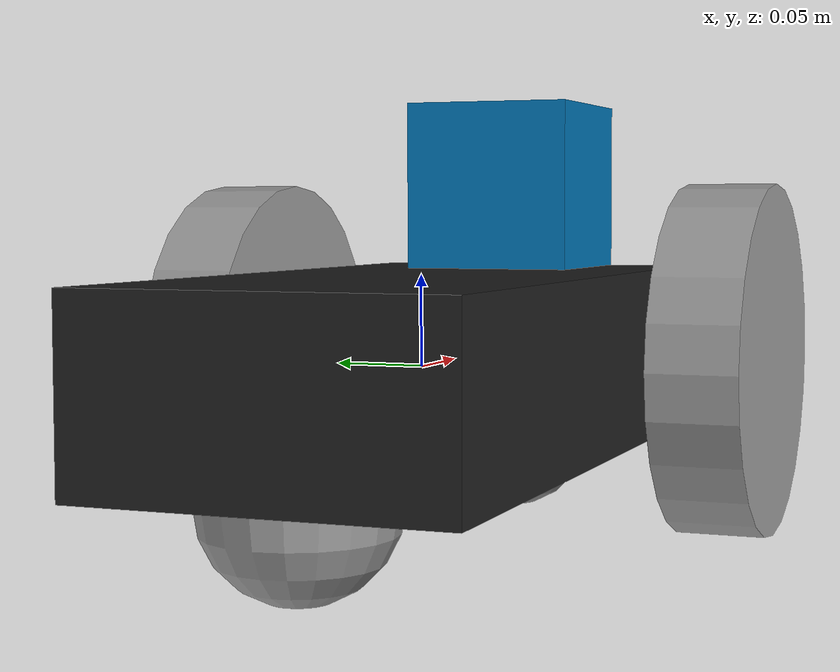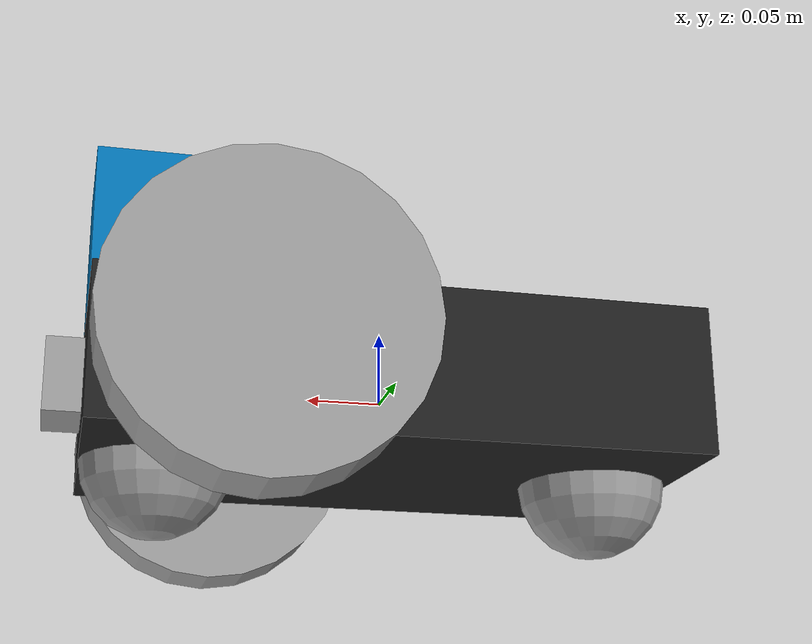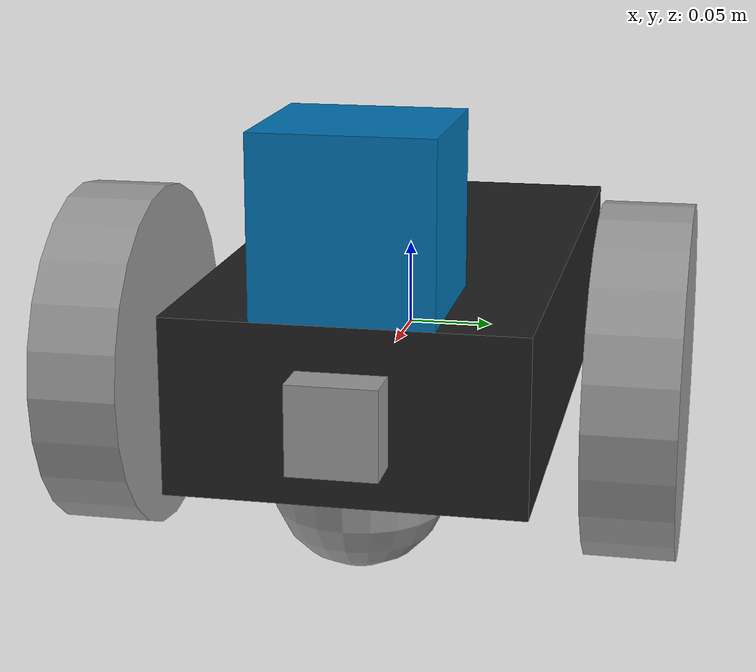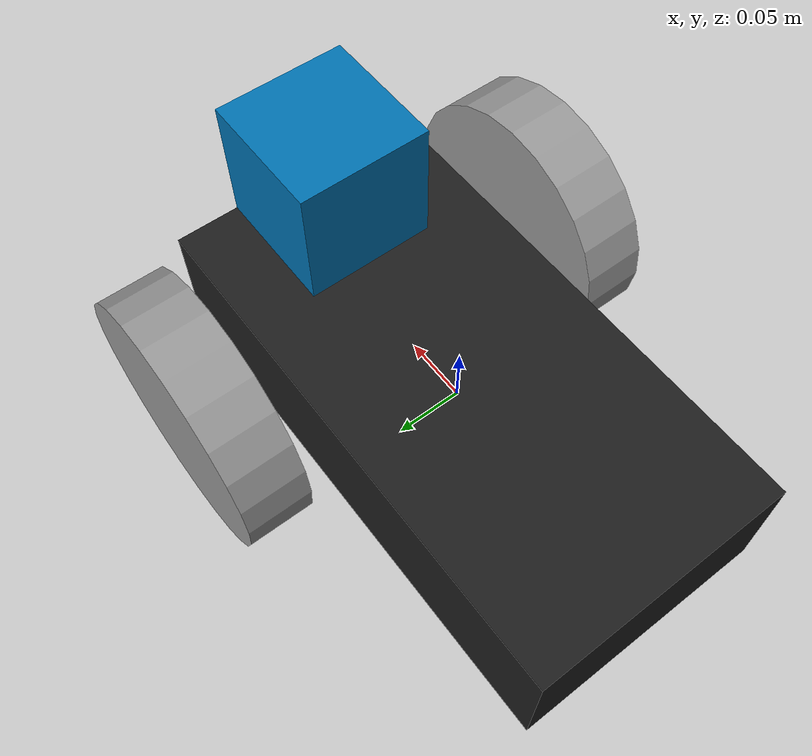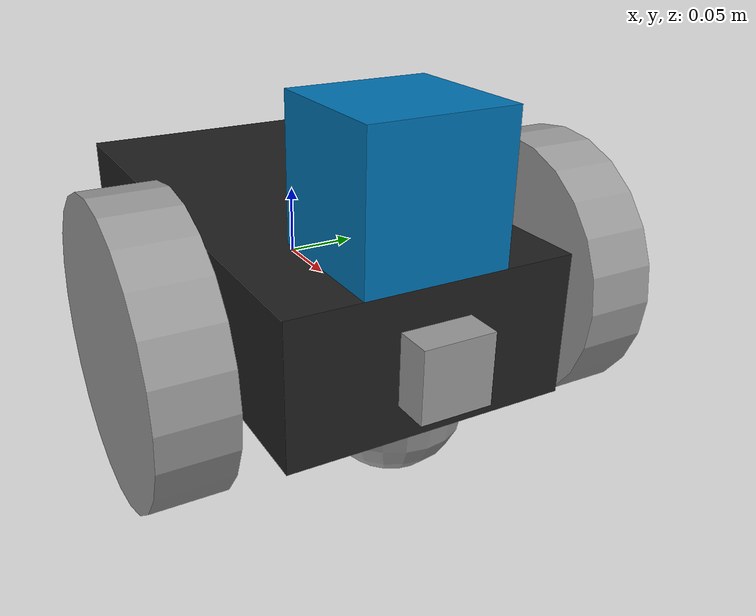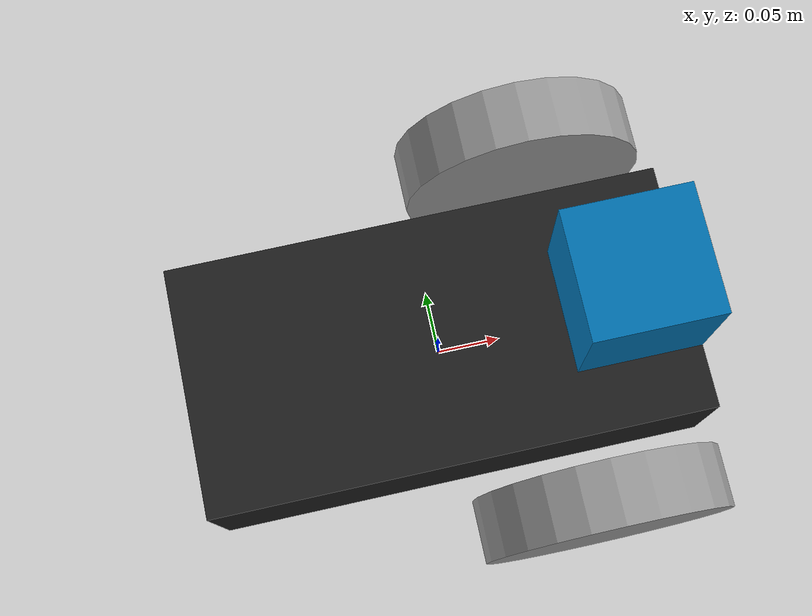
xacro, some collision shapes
<?xml version='1.0'?>

<robot name="slamRobot" xmlns:xacro="http://www.ros.org/wiki/xacro">

  <xacro:property name="cameraSize" value="0.05"/>
  <xacro:property name="cameraMass" value="0.1"/>

  <xacro:include filename="$(find slamBot_description)/urdf/slamBot.gazebo" />
  <xacro:include filename="$(find slamBot_description)/urdf/materials.xacro" />
  <xacro:include filename="$(find slamBot_description)/urdf/macros.xacro" />
  <!--plugin for omni wheels/-->
  <gazebo>
    <plugin name="object_controller" filename="libgazebo_ros_planar_move.so">
      <commandTopic>cmd_vel</commandTopic>
      <odometryTopic>odom</odometryTopic>
      <odometryFrame>odom</odometryFrame>
      <odometryRate>20.0</odometryRate>
      <robotBaseFrame>base</robotBaseFrame>
    </plugin>
  </gazebo>

  <link name='chassis'>
    <pose>0 0 0.1 0 0 0</pose>

    <inertial>
      <mass value="10.0"/>
      <origin xyz="0.0 0 0.1" rpy=" 0 0 0"/>
      <inertia
          ixx="0.5" ixy="0" ixz="0"
          iyy="1.0" iyz="0"
          izz="0.1"
      />
    </inertial>

    <collision name='collision'>
      <geometry>
        <box size=".4 .2 .1"/>
      </geometry>
    </collision>

    <visual name='chassis_visual'>
      <origin xyz="0 0 0" rpy=" 0 0 0"/>
      <geometry>
        <box size=".4 .2 .1"/>
      </geometry>
      <material name="black"/>
    </visual>

    <collision name='caster_collision'>
      <origin xyz="-0.15 0 -0.05" rpy=" 0 0 0"/>
      <geometry>
        <sphere radius="0.05"/>
      </geometry>
      <surface>
        <friction>
          <ode>
            <mu>0</mu>
            <mu2>0</mu2>
            <slip1>1.0</slip1>
            <slip2>1.0</slip2>
          </ode>
        </friction>
      </surface>
    </collision>

    <visual name='caster_visual'>
      <origin xyz="-0.15 0 -0.05" rpy=" 0 0 0"/>
      <geometry>
        <sphere radius="0.05"/>
      </geometry>
      <material name="grey"/>
    </visual>

    <collision name='caster_front_collision'>
      <origin xyz="0.15 0 -0.05" rpy=" 0 0 0"/>
      <geometry>
        <sphere radius="0.05"/>
      </geometry>
      <surface>
        <friction>
          <ode>
            <mu>0</mu>
            <mu2>0</mu2>
            <slip1>1.0</slip1>
            <slip2>1.0</slip2>
          </ode>
        </friction>
      </surface>
    </collision>

    <visual name='caster_front_visual'>
      <origin xyz="0.15 0 -0.05" rpy=" 0 0 0"/>
      <geometry>
        <sphere radius="0.05"/>
      </geometry>
      <material name="grey"/>
    </visual>

  </link>

  <link name="left_wheel">
    <!--origin xyz="0.1 0.13 0.1" rpy="0 1.5707 1.5707"/-->
    <collision name="collision">
      <origin xyz="0 0 0" rpy="0 1.5707 1.5707"/>
      <geometry>
        <cylinder radius="0.1" length="0.05"/>
      </geometry>
    </collision>
    <visual name="left_wheel_visual">
      <origin xyz="0 0 0" rpy="0 1.5707 1.5707"/>
      <geometry>
        <cylinder radius="0.1" length="0.05"/>
      </geometry>
      <material name="grey"/>
    </visual>
    <inertial>
      <origin xyz="0 0 0" rpy="0 1.5707 1.5707"/>
      <mass value="5"/>
      <cylinder_inertia m="5" r="0.1" h="0.05"/>
      <inertia
        ixx="1.0" ixy="0.0" ixz="0.0"
        iyy="1.0" iyz="0.0"
        izz="1.0"/>
    </inertial>
  </link>

  <link name="right_wheel">
    <!--origin xyz="0.1 -0.13 0.1" rpy="0 1.5707 1.5707"/-->
    <collision name="collision">
      <origin xyz="0 0 0" rpy="0 1.5707 1.5707"/>
      <geometry>
        <cylinder radius="0.1" length="0.05"/>
      </geometry>
    </collision>
    <visual name="right_wheel_visual">
      <origin xyz="0 0 0" rpy="0 1.5707 1.5707"/>
      <geometry>
        <cylinder radius="0.1" length="0.05"/>
      </geometry>
      <material name="grey"/>
    </visual>
    <inertial>
      <origin xyz="0 0 0" rpy="0 1.5707 1.5707"/>
      <mass value="5"/>
      <cylinder_inertia m="5" r="0.1" h="0.05"/>
      <inertia
        ixx="1.0" ixy="0.0" ixz="0.0"
        iyy="1.0" iyz="0.0"
        izz="1.0"/>
    </inertial>
  </link>

  <joint type="continuous" name="left_wheel_hinge">
    <origin xyz="0.1 0.15 0" rpy="0 0 0"/>
    <!--origin xyz="0.1 0.13 0" rpy="0 1.5707 1.5707"/-->
    <child link="left_wheel"/>
    <parent link="chassis"/>
    <axis xyz="0 1 0" rpy="0 0 0"/>
    <limit effort="100" velocity="100"/>
    <joint_properties damping="0.0" friction="0.0"/>
  </joint>

  <joint type="continuous" name="right_wheel_hinge">
    <origin xyz="0.1 -0.15 0" rpy="0 0 0"/>
    <!--origin xyz="0.1 -0.13 0" rpy="0 1.5707 1.5707"/-->
    <child link="right_wheel"/>
    <parent link="chassis"/>
    <axis xyz="0 1 0" rpy="0 0 0"/>
    <limit effort="100" velocity="100"/>
    <joint_properties damping="0.0" friction="0.0"/>
  </joint>

  <link name="camera">
    <collision>
      <origin xyz="0 0 0" rpy="0 0 0"/>
      <geometry>
        <box size="${cameraSize} ${cameraSize} ${cameraSize}"/>
      </geometry>
    </collision>

    <visual>
      <origin xyz="0 0 0" rpy="0 0 0"/>
      <geometry>
        <box size="${cameraSize} ${cameraSize} ${cameraSize}"/>
      </geometry>
      <material name="grey"/>
    </visual>

    <inertial>
      <mass value="${cameraMass}" />
      <origin xyz="0 0 0" rpy="0 0 0"/>
      <box_inertia m="${cameraMass}" x="${cameraSize}" y="${cameraSize}" z="${cameraSize}" />
      <inertia ixx="1e-6" ixy="0" ixz="0" iyy="1e-6" iyz="0" izz="1e-6" />
    </inertial>
  </link>

  <joint name="camera_joint" type="fixed">
    <axis xyz="0 1 0" />
    <origin xyz=".2 0 0" rpy="0 0 0"/>
    <parent link="chassis"/>
    <child link="camera"/>
  </joint>

  <joint name="hokuyo_joint" type="fixed">
    <axis xyz="0 1 0" />
    <origin xyz=".15 0 .1" rpy="0 0 0"/>
    <parent link="chassis"/>
    <child link="hokuyo"/>
  </joint>

  <!-- Hokuyo Laser -->
  <link name="hokuyo">
    <collision>
      <origin xyz="0 0 0" rpy="0 0 0"/>
      <geometry>
    <box size="0.1 0.1 0.1"/>
      </geometry>
    </collision>

    <visual>
      <origin xyz="0 0 0" rpy="0 0 0"/>
      <geometry>
        <mesh filename="package://slamBot_description/meshes/hokuyo.dae"/>
      </geometry>
    </visual>

    <inertial>
      <mass value="1e-5" />
      <origin xyz="0 0 0" rpy="0 0 0"/>
      <inertia ixx="1e-6" ixy="0" ixz="0" iyy="1e-6" iyz="0" izz="1e-6" />
    </inertial>
  </link>

</robot>
